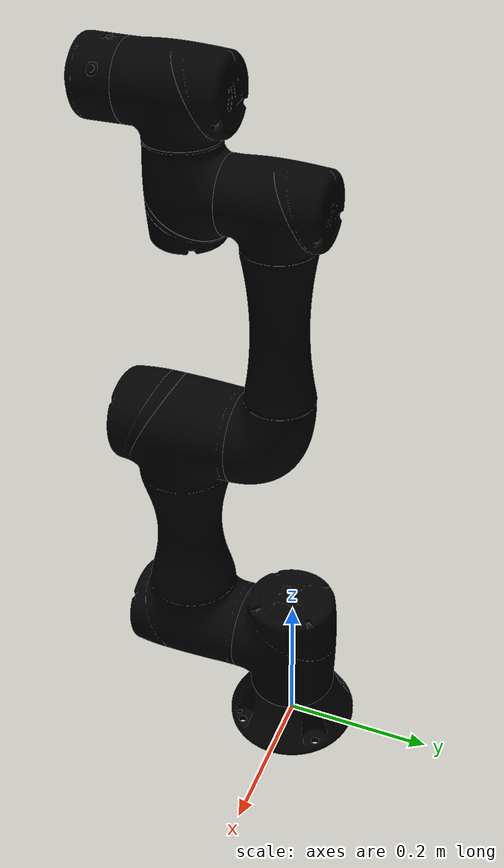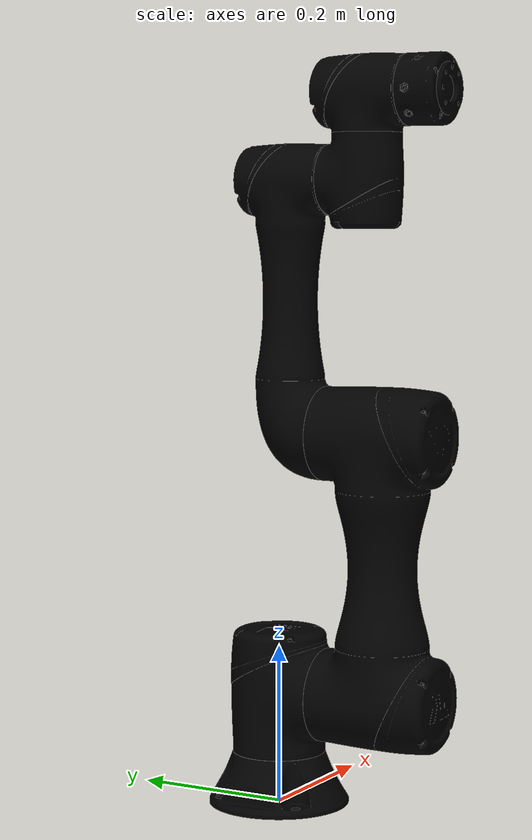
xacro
<?xml version="1.0"?>
<robot xmlns:xacro="http://www.ros.org/wiki/xacro" name="tm5x-700">

  <xacro:arg name="ns" default="" />
  <xacro:arg name="prefix" default="" />
  <xacro:arg name="color" default="none" />
  <xacro:arg name="trans_hw_iface" default="hardware_interface/PositionJointInterface" />

  <xacro:include filename="$(find tm_gazebo)/xacro/tm.gazebo.xacro" />
  <xacro:include filename="$(find tm_description)/xacro/macro.transmission.xacro" />
  <xacro:include filename="$(find tm_description)/xacro/macro.materials.xacro" />

  <!-- tm5x-700 -->
  <!-- If the user want to use newly generated named robot description file as user_defined.urdf.xacro, -->
  <!-- you must modify 'macro.tm5x-700-nominal.urdf.xacro' to 'user_defined.urdf.xacro'  -->
  <xacro:include filename="$(find tm_description)/xacro/macro.tm5x-700-nominal.urdf.xacro" />

  <xacro:tmr_gazebo ns="$(arg ns)" prefix="$(arg prefix)" />
  <xacro:tmr_transmission prefix="$(arg prefix)" hw_iface="$(arg trans_hw_iface)" />
  <xacro:tmr_materials/>

  <!-- Arm -->
  <xacro:property name="color" value="$(arg color)"/>
  <xacro:if value="${color == 'none'}">
    <xacro:tm5x-700 ns="$(arg ns)" prefix="$(arg prefix)" />
  </xacro:if>

  <!-- Arm.color.stl -->
  <xacro:unless value="${color == 'none'}">
    <xacro:tm5x-700 ns="$(arg ns)" prefix="$(arg prefix)" color="${color}" format="obj" />
  </xacro:unless>

  <link name="world" />
  <joint name="world_joint" type="fixed">
    <parent link="world" />
    <child link="base" />
    <origin xyz="0 0 0" rpy="0 0 0" />
  </joint>

</robot>

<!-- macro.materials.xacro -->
<robot xmlns:xacro="http://www.ros.org/wiki/xacro">
    <xacro:macro name="tmr_materials">
        <material name="none">
            <color rgba="0.0 0.0 0.0 1.0" />
        </material>
        <material name="lightgrey">
            <color rgba="0.5 0.5 0.5 1.0" />
        </material>
        <material name="grey">
            <color rgba="0.75 0.75 0.75 1.0" />
        </material>
        <material name="white">
            <color rgba="0.95 0.95 0.95 1.0" />
        </material>
        <material name="red">
            <color rgba="0.95 0.0 0.0 1.0" />
        </material>
        <material name="orange">
            <color rgba="1.0 0.5 0.0 1.0" />
        </material>
        <material name="yellow">
            <color rgba="1.0 1.0 0.0 1.0" />
        </material>
        <material name="green">
            <color rgba="0.0 1.0 0.0 1.0" />
        </material>
        <material name="blue">
            <color rgba="0.0 0.0 1.0 1.0" />
        </material>
        <material name="indigo">
            <color rgba="0.3 0.3 0.6 1.0" />
        </material>
        <material name="violet">
            <color rgba="0.6 0.0 1.0 1.0" />
        </material>
        <material name="black">
            <color rgba="0.0 0.0 0.0 1.0" />
        </material>
        <material name="darkolive">
            <color rgba="0.3 0.3 0.25 1.0" />
        </material>
    </xacro:macro>
</robot>

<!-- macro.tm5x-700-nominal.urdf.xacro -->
<robot xmlns:xacro="http://www.ros.org/wiki/xacro">

  <xacro:include filename="$(find tm_description)/xacro/macro.inertial.xacro" />

  <xacro:macro name="tm5x-700" params="ns prefix color:=none format:=obj
    shoulder_1_joint_lower_limit:=${radians(-360)}    shoulder_1_joint_upper_limit:=${radians(360)}
    shoulder_2_joint_lower_limit:=${radians(-360)}    shoulder_2_joint_upper_limit:=${radians(360)}
    elbow_joint_lower_limit:=${radians(-155)}    elbow_joint_upper_limit:=${radians(155)}
    wrist_1_joint_lower_limit:=${radians(-360)}    wrist_1_joint_upper_limit:=${radians(360)}
    wrist_2_joint_lower_limit:=${radians(-360)}    wrist_2_joint_upper_limit:=${radians(360)}
    wrist_3_joint_lower_limit:=${radians(-360)}    wrist_3_joint_upper_limit:=${radians(360)}
    shoulder_1_joint_velocity_limit:=${radians(180)}
    shoulder_2_joint_velocity_limit:=${radians(180)}
    elbow_joint_velocity_limit:=${radians(180)}
    wrist_1_joint_velocity_limit:=${radians(225)}
    wrist_2_joint_velocity_limit:=${radians(225)}
    wrist_3_joint_velocity_limit:=${radians(225)}
    shoulder_1_joint_effort_limit:=${157}
    shoulder_2_joint_effort_limit:=${157}
    elbow_joint_effort_limit:=${157}
    wrist_1_joint_effort_limit:=${43}
    wrist_2_joint_effort_limit:=${43}
    wrist_3_joint_effort_limit:=${43}
    safety_limits:=false safety_pos_margin:=0.15
    safety_k_position:=20">

    <xacro:property name="damping_factor" value="0.000"/>
    <xacro:property name="d1" value="${damping_factor*0.1}"/>
    <xacro:property name="d2" value="${damping_factor*0.1}"/>
    <xacro:property name="d3" value="${damping_factor*0.1}"/>
    <xacro:property name="d4" value="${damping_factor*0.1}"/>
    <xacro:property name="d5" value="${damping_factor*0.1}"/>
    <xacro:property name="d6" value="${damping_factor*0.1}"/>

    <xacro:property name="friction_factor" value="0.000"/>
    <xacro:property name="f1" value="${friction_factor*0.1}"/>
    <xacro:property name="f2" value="${friction_factor*0.1}"/>
    <xacro:property name="f3" value="${friction_factor*0.1}"/>
    <xacro:property name="f4" value="${friction_factor*0.1}"/>
    <xacro:property name="f5" value="${friction_factor*0.1}"/>
    <xacro:property name="f6" value="${friction_factor*0.1}"/>

    <!-- Inertia parameters -->
    <xacro:property name="mass_0" value="1.000" />
    <xacro:property name="mass_1" value="4.032" />
    <xacro:property name="mass_2" value="8.567" />
    <xacro:property name="mass_3" value="2.273" />
    <xacro:property name="mass_4" value="1.576" />
    <xacro:property name="mass_5" value="1.576" />
    <xacro:property name="mass_6" value="0.31" />

    <xacro:property name="unit_factor" value="0.000001"/>
    <xacro:property name="ixx_1" value="${8800.119*unit_factor}" />
    <xacro:property name="ixx_2" value="${23552.072*unit_factor}" />
    <xacro:property name="ixx_3" value="${3380.181*unit_factor}" />
    <xacro:property name="ixx_4" value="${2058.405*unit_factor}" />
    <xacro:property name="ixx_5" value="${2058.405*unit_factor}" />
    <xacro:property name="ixx_6" value="${226.642*unit_factor}" />

    <xacro:property name="iyy_1" value="${11548.982*unit_factor}" />
    <xacro:property name="iyy_2" value="${198251.97*unit_factor}" />
    <xacro:property name="iyy_3" value="${33829.144*unit_factor}" />
    <xacro:property name="iyy_4" value="${2563.079*unit_factor}" />
    <xacro:property name="iyy_5" value="${2563.079*unit_factor}" />
    <xacro:property name="iyy_6" value="${226.642*unit_factor}" />

    <xacro:property name="izz_1" value="${11970.081*unit_factor}" />
    <xacro:property name="izz_2" value="${204592.54*unit_factor}" />
    <xacro:property name="izz_3" value="${34328.203*unit_factor}" />
    <xacro:property name="izz_4" value="${2643.21*unit_factor}" />
    <xacro:property name="izz_5" value="${2643.21*unit_factor}" />
    <xacro:property name="izz_6" value="${286.595*unit_factor}" />

<!--LinkDescription-->
  <link name="${prefix}link_0">
    <visual>
      <geometry>
        <mesh filename="package://tm_description/meshes/tm5-900/visual/tm5-base.${format}" />
      </geometry>
      <material name="${color}" />
    </visual>
    <collision>
      <geometry>
        <mesh filename="package://tm_description/meshes/tm5-900/collision/tm5-base_c.stl" />
      </geometry>
    </collision>
<!--inertial-->
    <xacro:cylinder_inertial_z radius="0.06" length="0.05" mass="${mass_0}">
      <origin rpy="0.000000 0.000000 0.000000" xyz="0.000000 0.000000 0.000000" />
    </xacro:cylinder_inertial_z>
  </link>
  <joint name="${prefix}shoulder_1_joint" type="revolute">
    <parent link="${prefix}link_0" />
    <child link="${prefix}link_1" />
    <origin rpy="0.000000 -0.000000 0.000000" xyz="0.000000 0.000000 0.145200" />
    <axis xyz="0 0 1" />
<!--limit-->
    <limit lower="${shoulder_1_joint_lower_limit}" upper="${shoulder_1_joint_upper_limit}" velocity="${shoulder_1_joint_velocity_limit}" effort="${shoulder_1_joint_effort_limit}" />
    <xacro:if value="${safety_limits}">
      <safety_controller soft_lower_limit="${shoulder_1_joint_lower_limit + safety_pos_margin}" soft_upper_limit="${shoulder_1_joint_upper_limit - safety_pos_margin}" k_position="${safety_k_position}" k_velocity="0.0" />
    </xacro:if>
    <dynamics damping="${d1}" friction="${f1}" />
  </joint>
  <link name="${prefix}link_1">
    <visual>
      <geometry>
        <mesh filename="package://tm_description/meshes/tm5-900/visual/tmr_400w_01.${format}" />
      </geometry>
      <material name="${color}" />
    </visual>
    <collision>
      <geometry>
        <mesh filename="package://tm_description/meshes/tm5-900/collision/tmr_400w_01_c.stl" />
      </geometry>
    </collision>
    <inertial>
      <origin rpy="0.000000 0.000000 0.000000" xyz="0.000000 0.000000 0.000000" />
      <mass value="${mass_1}" />
      <inertia ixx="${ixx_1}" ixy="0.000000" ixz="0.000000" iyy="${iyy_1}" iyz="0.000000" izz="${izz_1}" />
    </inertial>
  </link>
  <joint name="${prefix}shoulder_2_joint" type="revolute">
    <parent link="${prefix}link_1" />
    <child link="${prefix}link_2" />
    <origin rpy="-1.570796 -1.570796 0.000000" xyz="0.000000 0.000000 0.000000" />
    <axis xyz="0 0 1" />
<!--limit-->
    <limit lower="${shoulder_2_joint_lower_limit}" upper="${shoulder_2_joint_upper_limit}" velocity="${shoulder_2_joint_velocity_limit}" effort="${shoulder_2_joint_effort_limit}" />
    <xacro:if value="${safety_limits}">
      <safety_controller soft_lower_limit="${shoulder_2_joint_lower_limit + safety_pos_margin}" soft_upper_limit="${shoulder_2_joint_upper_limit - safety_pos_margin}" k_position="${safety_k_position}" k_velocity="0.0" />
    </xacro:if>
    <dynamics damping="${d2}" friction="${f2}" />
  </joint>
  <link name="${prefix}link_2">
    <visual>
      <geometry>
        <mesh filename="package://tm_description/meshes/tm5-700/visual/tm5-700_arm1.${format}" />
      </geometry>
      <material name="${color}" />
    </visual>
    <collision>
      <geometry>
        <mesh filename="package://tm_description/meshes/tm5-700/collision/tm5-700_arm1_c.stl" />
      </geometry>
    </collision>
    <inertial>
      <origin rpy="0.000000 0.000000 0.000000" xyz="0.000000 0.000000 0.000000" />
      <mass value="${mass_2}" />
      <inertia ixx="${ixx_2}" ixy="0.000000" ixz="0.000000" iyy="${iyy_2}" iyz="0.000000" izz="${izz_2}" />
    </inertial>
  </link>
  <joint name="${prefix}elbow_joint" type="revolute">
    <parent link="${prefix}link_2" />
    <child link="${prefix}link_3" />
    <origin rpy="0.000000 -0.000000 0.000000" xyz="0.329000 0.000000 0.000000" />
    <axis xyz="0 0 1" />
<!--limit-->
    <limit lower="${elbow_joint_lower_limit}" upper="${elbow_joint_upper_limit}" velocity="${elbow_joint_velocity_limit}" effort="${elbow_joint_effort_limit}" />
    <xacro:if value="${safety_limits}">
      <safety_controller soft_lower_limit="${elbow_joint_lower_limit + safety_pos_margin}" soft_upper_limit="${elbow_joint_upper_limit - safety_pos_margin}" k_position="${safety_k_position}" k_velocity="0.0" />
    </xacro:if>
    <dynamics damping="${d3}" friction="${f3}" />
  </joint>
  <link name="${prefix}link_3">
    <visual>
      <geometry>
        <mesh filename="package://tm_description/meshes/tm5-700/visual/tm5-700_arm2.${format}" />
      </geometry>
      <material name="${color}" />
    </visual>
    <collision>
      <geometry>
        <mesh filename="package://tm_description/meshes/tm5-700/collision/tm5-700_arm2_c.stl" />
      </geometry>
    </collision>
    <inertial>
      <origin rpy="0.000000 0.000000 0.000000" xyz="0.000000 0.000000 0.000000" />
      <mass value="${mass_3}" />
      <inertia ixx="${ixx_3}" ixy="0.000000" ixz="0.000000" iyy="${iyy_3}" iyz="0.000000" izz="${izz_3}" />
    </inertial>
  </link>
  <joint name="${prefix}wrist_1_joint" type="revolute">
    <parent link="${prefix}link_3" />
    <child link="${prefix}link_4" />
    <origin rpy="0.000000 -0.000000 1.570796" xyz="0.311500 0.000000 -0.122300" />
    <axis xyz="0 0 1" />
<!--limit-->
    <limit lower="${wrist_1_joint_lower_limit}" upper="${wrist_1_joint_upper_limit}" velocity="${wrist_1_joint_velocity_limit}" effort="${wrist_1_joint_effort_limit}" />
    <xacro:if value="${safety_limits}">
      <safety_controller soft_lower_limit="${wrist_1_joint_lower_limit + safety_pos_margin}" soft_upper_limit="${wrist_1_joint_upper_limit - safety_pos_margin}" k_position="${safety_k_position}" k_velocity="0.0" />
    </xacro:if>
    <dynamics damping="${d4}" friction="${f4}" />
  </joint>
  <link name="${prefix}link_4">
    <visual>
      <geometry>
        <mesh filename="package://tm_description/meshes/tm5-900/visual/tmr_100w_01.${format}" />
      </geometry>
      <material name="${color}" />
    </visual>
    <collision>
      <geometry>
        <mesh filename="package://tm_description/meshes/tm5-900/collision/tmr_100w_01_c.stl" />
      </geometry>
    </collision>
    <inertial>
      <origin rpy="0.000000 0.000000 0.000000" xyz="0.000000 0.000000 0.000000" />
      <mass value="${mass_4}" />
      <inertia ixx="${ixx_4}" ixy="0.000000" ixz="0.000000" iyy="${iyy_4}" iyz="0.000000" izz="${izz_4}" />
    </inertial>
  </link>
  <joint name="${prefix}wrist_2_joint" type="revolute">
    <parent link="${prefix}link_4" />
    <child link="${prefix}link_5" />
    <origin rpy="1.570796 -0.000000 0.000000" xyz="0.000000 -0.106000 0.000000" />
    <axis xyz="0 0 1" />
<!--limit-->
    <limit lower="${wrist_2_joint_lower_limit}" upper="${wrist_2_joint_upper_limit}" velocity="${wrist_2_joint_velocity_limit}" effort="${wrist_2_joint_effort_limit}" />
    <xacro:if value="${safety_limits}">
      <safety_controller soft_lower_limit="${wrist_2_joint_lower_limit + safety_pos_margin}" soft_upper_limit="${wrist_2_joint_upper_limit - safety_pos_margin}" k_position="${safety_k_position}" k_velocity="0.0" />
    </xacro:if>
    <dynamics damping="${d5}" friction="${f5}" />
  </joint>
  <link name="${prefix}link_5">
    <visual>
      <geometry>
        <mesh filename="package://tm_description/meshes/tm5-900/visual/tmr_100w_02.${format}" />
      </geometry>
      <material name="${color}" />
    </visual>
    <collision>
      <geometry>
        <mesh filename="package://tm_description/meshes/tm5-900/collision/tmr_100w_02_c.stl" />
      </geometry>
    </collision>
    <inertial>
      <origin rpy="0.000000 0.000000 0.000000" xyz="0.000000 0.000000 0.000000" />
      <mass value="${mass_5}" />
      <inertia ixx="${ixx_5}" ixy="0.000000" ixz="0.000000" iyy="${iyy_5}" iyz="0.000000" izz="${izz_5}" />
    </inertial>
  </link>
  <joint name="${prefix}wrist_3_joint" type="revolute">
    <parent link="${prefix}link_5" />
    <child link="${prefix}link_6" />
    <origin rpy="1.570796 -0.000000 0.000000" xyz="0.000000 -0.113150 0.000000" />
    <axis xyz="0 0 1" />
<!--limit-->
    <limit lower="${wrist_3_joint_lower_limit}" upper="${wrist_3_joint_upper_limit}" velocity="${wrist_3_joint_velocity_limit}" effort="${wrist_3_joint_effort_limit}" />
    <xacro:if value="${safety_limits}">
      <safety_controller soft_lower_limit="${wrist_3_joint_lower_limit + safety_pos_margin}" soft_upper_limit="${wrist_3_joint_upper_limit - safety_pos_margin}" k_position="${safety_k_position}" k_velocity="0.0" />
    </xacro:if>
    <dynamics damping="${d6}" friction="${f6}" />
  </joint>
  <link name="${prefix}link_6">
    <visual>
      <geometry>
        <mesh filename="package://tm_description/meshes/tm5-900/visual/tmr_iox.${format}" />
      </geometry>
      <material name="${color}" />
    </visual>
    <collision>
      <geometry>
        <mesh filename="package://tm_description/meshes/tm5-900/collision/tmr_iox_c.stl" />
      </geometry>
    </collision>
    <inertial>
      <origin rpy="0.000000 0.000000 0.000000" xyz="0.000000 0.000000 0.000000" />
      <mass value="${mass_6}" />
      <inertia ixx="${ixx_6}" ixy="0.000000" ixz="0.000000" iyy="${iyy_6}" iyz="0.000000" izz="${izz_6}" />
    </inertial>
  </link>
  <joint name="${prefix}flange_fixed_joint" type="fixed">
    <parent link="${prefix}link_6" />
    <child link="${prefix}flange_link" />
    <origin rpy="0.000000 0.000000 0.000000" xyz="0.000000 0.000000 0.000000" />
  </joint>

  <link name="${prefix}flange_link" />

  <link name="${prefix}base" />
  <joint name="${prefix}base_fixed_joint" type="fixed">
    <parent link="${prefix}base" />
    <child link="${prefix}link_0" />
    <origin rpy="0.000000 0.000000 0.000000" xyz="0.000000 0.000000 0.000000" />
  </joint>
  <link name="${prefix}tool0" />
  <joint name="${prefix}flange_link-tool0" type="fixed">
    <parent link="${prefix}flange_link" />
    <child link="${prefix}tool0" />
    <origin rpy="0.000000 0.000000 0.000000" xyz="0.000000 0.000000 0.000000" />
  </joint>
<!--LinkDescription-->

  </xacro:macro>

</robot>
